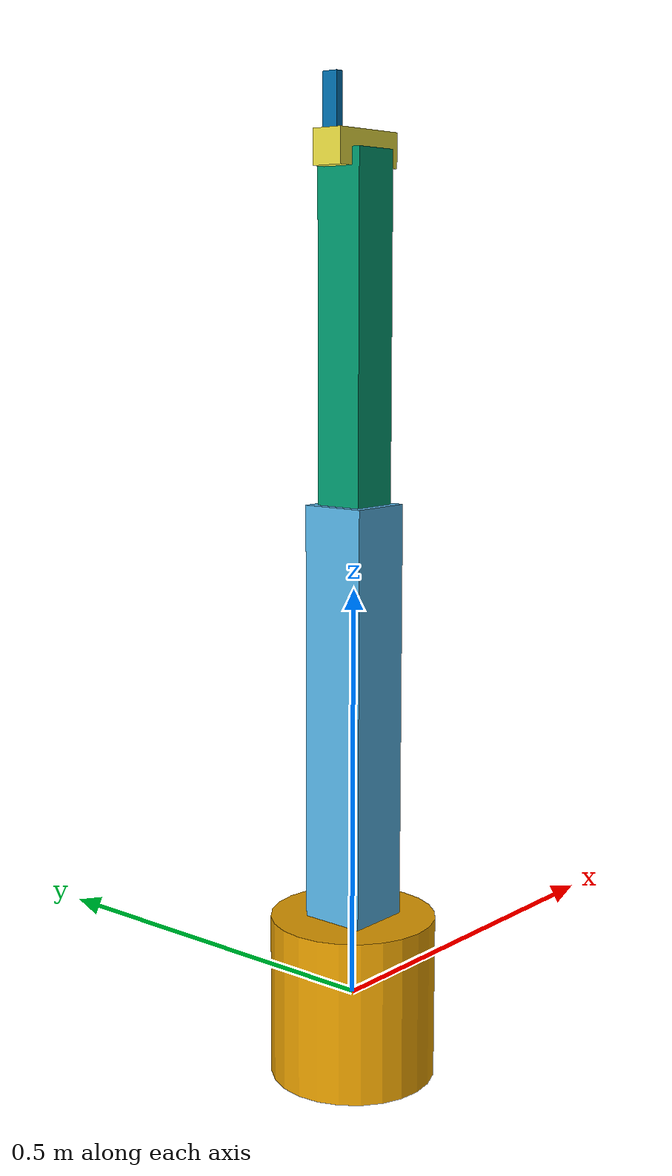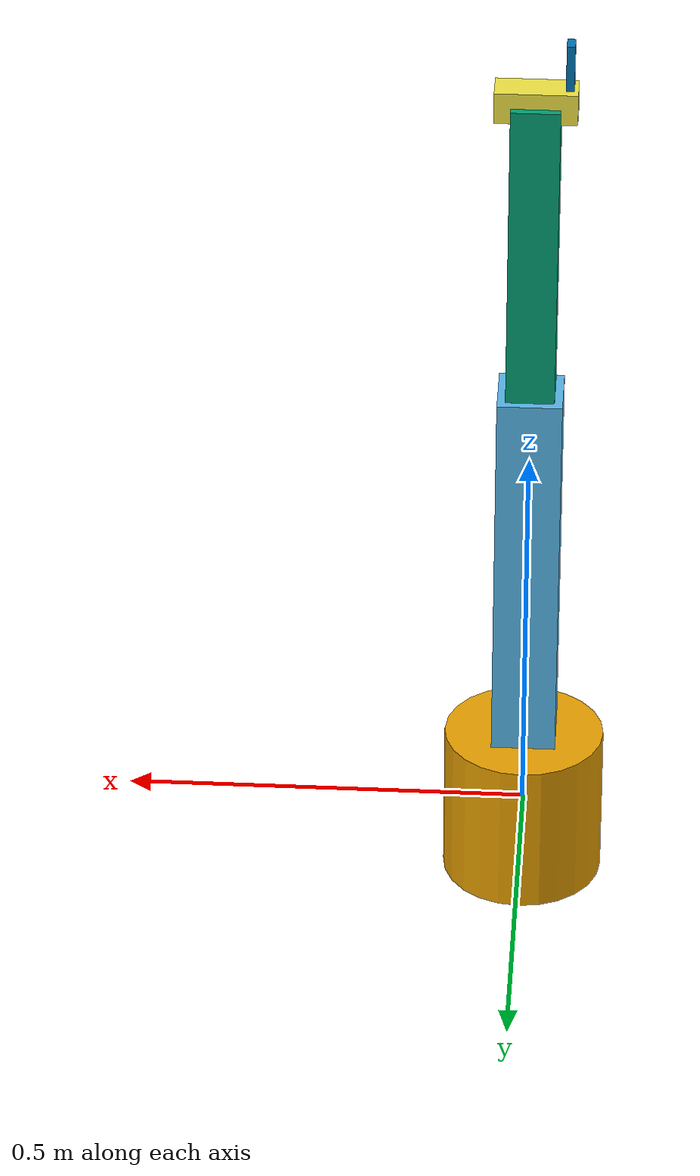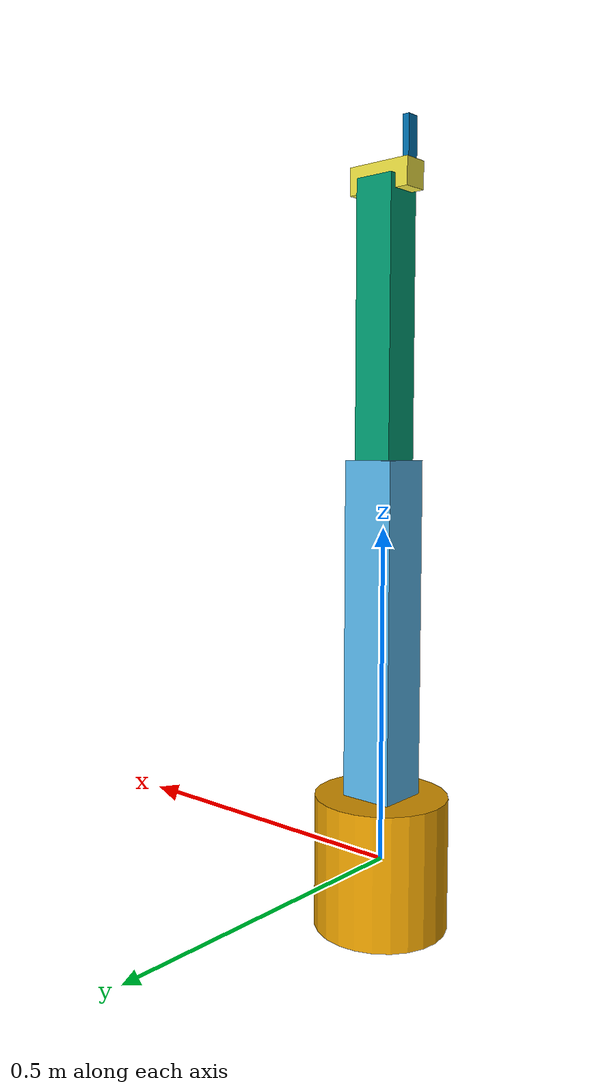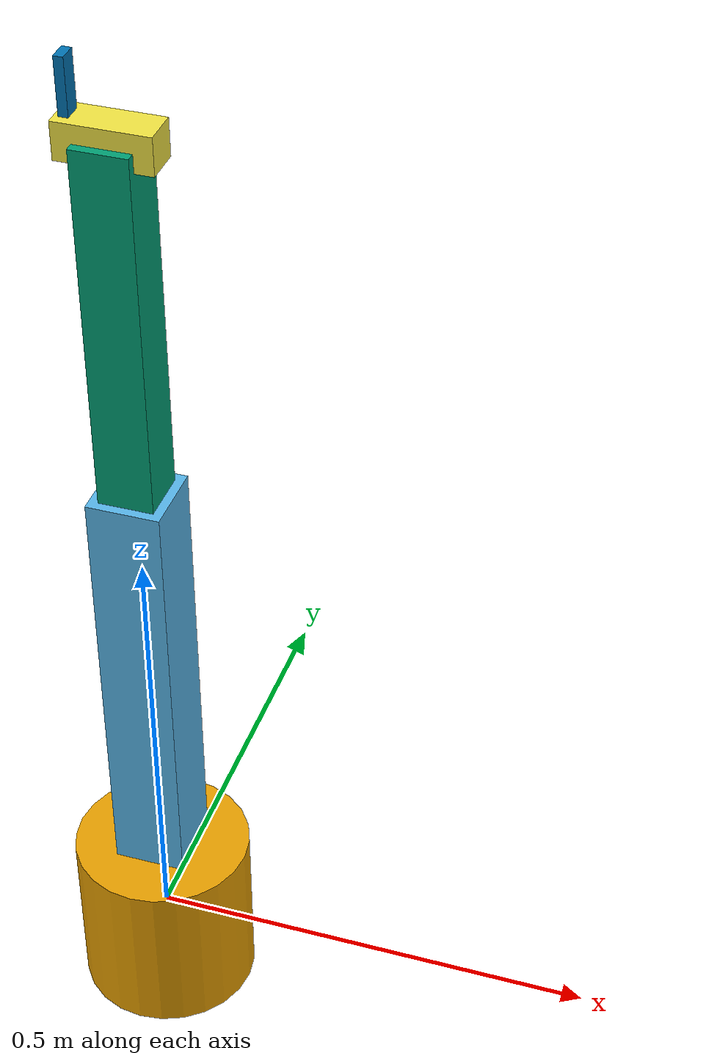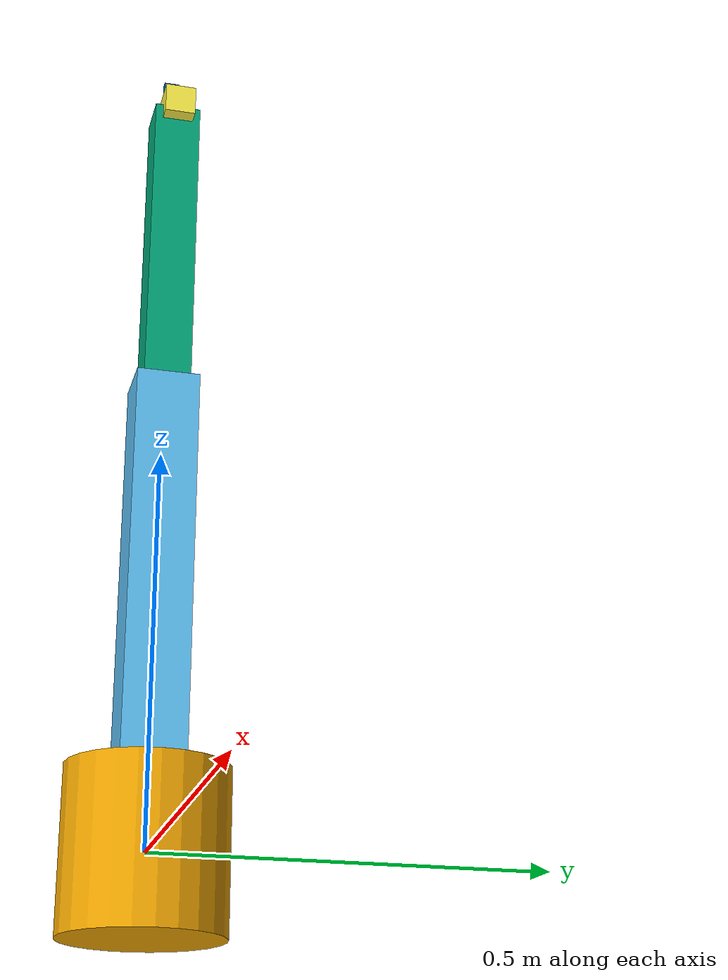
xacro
<?xml version="1.0"?>
<robot xmlns:xacro="http://www.ros.org/wiki/xacro" name="simple_manipulator">
    <xacro:arg name="initial_positions_file" default="initial_positions.yaml" />

    <!-- Import simple_manipulator urdf file -->
    <xacro:include filename="$(find test)/urdf/robot.urdf" />

    <!-- Import control_xacro -->
    <xacro:include filename="simple_manipulator.ros2_control.xacro" />

    <xacro:simple_manipulator_ros2_control name="FakeSystem" initial_positions_file="$(arg initial_positions_file)"/>

    <gazebo>
    <plugin filename="libgz_ros2_control-system.so" name="gz_ros2_control::GazeboSimROS2ControlPlugin">
      <parameters>$(find simple_manipulator_moveit_config)/config/ros2_controllers.yaml</parameters>
      <controller_manager_name>controller_manager</controller_manager_name>
    </plugin>
  </gazebo>
</robot>

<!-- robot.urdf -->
<robot name="simple_manipulator">

  <link name="base_link">
    <visual>
      <geometry>
        <cylinder length="0.2" radius="0.1"/>
      </geometry>
    </visual>
    <collision>
      <geometry>
        <cylinder length="0.2" radius="0.1"/>
      </geometry>
    </collision>
    <inertial>
    <origin xyz="0 0 0.25" rpy="0 0 0"/> <mass value="1.0"/> <inertia ixx="0.0213" ixy="0.0" ixz="0.0" iyy="0.0213" iyz="0.0" izz="0.001"/>
    </inertial>
  </link>

  <joint name="joint_1" type="revolute">
    <parent link="base_link"/>
    <child link="link_2"/>
    <origin xyz="0 0 0.1" rpy="0 0 0"/>
    <axis xyz="0 0 1"/>
    <limit lower="-3.14" upper="3.14" effort="10.0" velocity="1.0"/>
  </joint>

  <link name="link_2">
    <visual>
      <origin xyz="0 0 0.25" rpy="0 0 0"/>
      <geometry>
        <box size="0.08 0.08 0.5"/>
      </geometry>
    </visual>
    <collision>
      <origin xyz="0 0 0.25" rpy="0 0 0"/>
      <geometry>
        <box size="0.08 0.08 0.5"/>
      </geometry>
    </collision>
    <inertial>
    <origin xyz="0 0 0.25" rpy="0 0 0"/> <mass value="1.0"/> <inertia ixx="0.0213" ixy="0.0" ixz="0.0" iyy="0.0213" iyz="0.0" izz="0.001"/>
    </inertial>
  </link>

  <joint name="joint_2" type="revolute">
    <parent link="link_2"/>
    <child link="link_3"/>
    <origin xyz="0 0 0.5" rpy="0 0 0"/>
    <axis xyz="0 1 0"/>
    <limit lower="-1.57" upper="1.57" effort="10.0" velocity="1.0"/>
  </joint>

  <link name="link_3">
    <visual>
      <origin xyz="0 0 0.2" rpy="0 0 0"/>
      <geometry>
        <box size="0.06 0.06 0.4"/>
      </geometry>
    </visual>
    <collision>
      <origin xyz="0 0 0.2" rpy="0 0 0"/>
      <geometry>
        <box size="0.06 0.06 0.4"/>
      </geometry>
    </collision>
    <inertial>
    <origin xyz="0 0 0.25" rpy="0 0 0"/> <mass value="1.0"/> <inertia ixx="0.0213" ixy="0.0" ixz="0.0" iyy="0.0213" iyz="0.0" izz="0.001"/>
    </inertial>
  </link>

  <joint name="gripper_base_joint" type="fixed">
    <parent link="link_3"/>
    <child link="gripper_base"/>
    <origin xyz="0 0 0.4" rpy="0 0 0"/>
  </joint>

  <link name="gripper_base">
    <visual>
      <geometry>
        <box size="0.1 0.04 0.04"/>
      </geometry>
    </visual>
    <collision>
      <geometry>
        <box size="0.1 0.04 0.04"/>
      </geometry>
    </collision>
    <inertial>
    <origin xyz="0 0 0.25" rpy="0 0 0"/> <mass value="1.0"/> <inertia ixx="0.0213" ixy="0.0" ixz="0.0" iyy="0.0213" iyz="0.0" izz="0.001"/>
    </inertial>
  </link>

  <joint name="left_gripper_joint" type="prismatic">
    <parent link="gripper_base"/>
    <child link="left_gripper_jaw"/>
    <origin xyz="-0.04 0 0.02" rpy="0 0 0"/>
    <axis xyz="1 0 0"/>
    <limit lower="0.0" upper="0.03" effort="5.0" velocity="0.5"/>
  </joint>

  <link name="left_gripper_jaw">
    <visual>
      <origin xyz="0 0 0.03" rpy="0 0 0"/>
      <geometry>
        <box size="0.01 0.02 0.06"/>
      </geometry>
    </visual>
    <collision>
      <origin xyz="0 0 0.03" rpy="0 0 0"/>
      <geometry>
        <box size="0.01 0.02 0.06"/>
      </geometry>
    </collision>
    <inertial>
    <origin xyz="0 0 0.25" rpy="0 0 0"/> <mass value="1.0"/> <inertia ixx="0.0213" ixy="0.0" ixz="0.0" iyy="0.0213" iyz="0.0" izz="0.001"/>
    </inertial>
  </link>

</robot>
